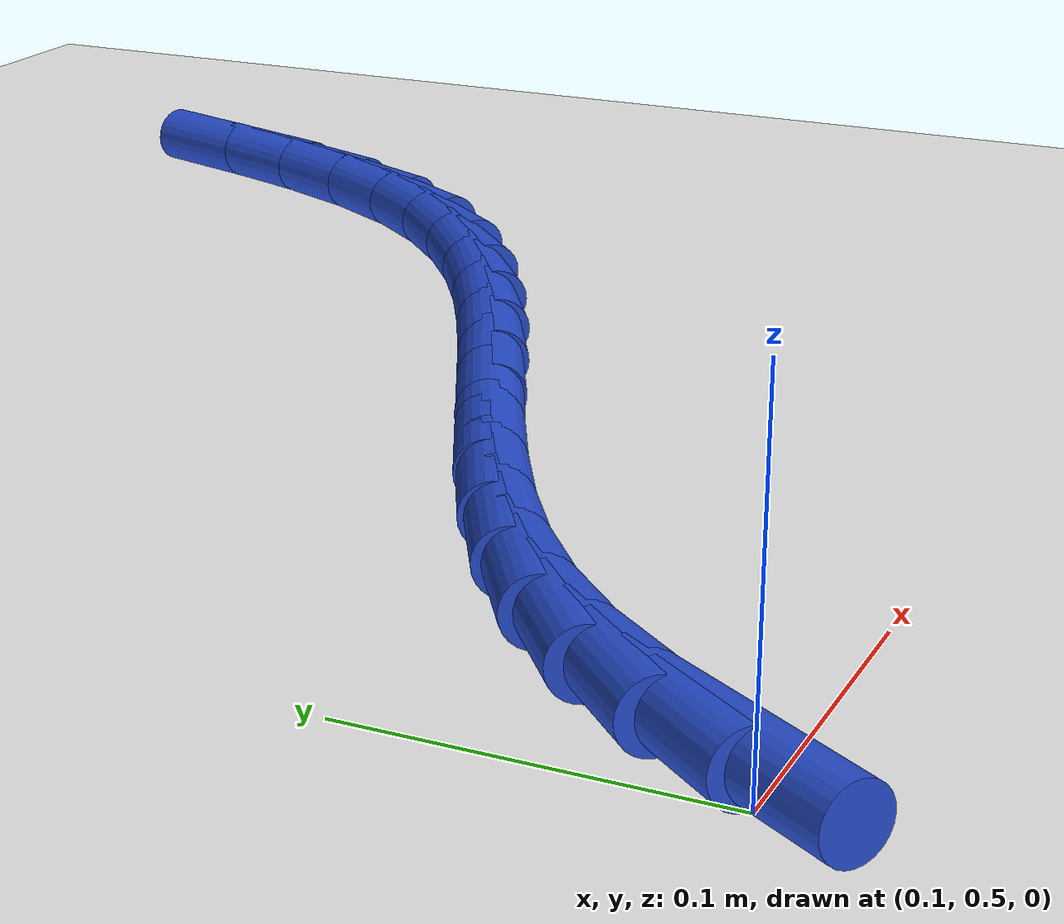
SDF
<sdf version="1.6">
 <world name="default">
  <model name="ground_plane">
   <static>1</static>
   <link name="link">
    <collision name="collision">
     <geometry><plane><normal>0 0 1</normal><size>100 100</size></plane></geometry>
     <surface><friction><ode><mu>100</mu><mu2>50</mu2></ode></friction></surface>
    </collision>
    <visual name="visual">
     <cast_shadows>0</cast_shadows>
     <geometry><plane><normal>0 0 1</normal><size>100 100</size></plane></geometry>
     <material>
      <script><uri>file://media/materials/scripts/gazebo.material</uri><name>Gazebo/WhiteGlow</name></script>
     </material>
    </visual>
   </link>
  </model>
  <model name="line">
   <link name="link_17">
    <pose>0.10909490639195141 0.5079274815498676 0.01 0 1.57 0.9995976883542236</pose>
    <collision name="collision">
     <geometry><cylinder><radius>0.01</radius><length>0.08</length></cylinder></geometry>
    </collision>
    <visual name="visual">
     <material>
      <script><name>Gazebo/Blue</name><uri>file://media/materials/scripts/gazebo.material</uri></script>
     </material>
     <geometry><cylinder><radius>0.01</radius><length>0.08</length></cylinder></geometry>
    </visual>
   </link>
   <link name="link_18">
    <pose>0.1248713026937554 0.5324760347667303 0.01 0 1.57 0.8910995392675002</pose>
    <collision name="collision">
     <geometry><cylinder><radius>0.01</radius><length>0.08</length></cylinder></geometry>
    </collision>
    <visual name="visual">
     <material>
      <script><name>Gazebo/Blue</name><uri>file://media/materials/scripts/gazebo.material</uri></script>
     </material>
     <geometry><cylinder><radius>0.01</radius><length>0.08</length></cylinder></geometry>
    </visual>
   </link>
   <link name="link_19">
    <pose>0.1429805689134286 0.5548840555922063 0.01 0 1.57 0.7683180647985376</pose>
    <collision name="collision">
     <geometry><cylinder><radius>0.01</radius><length>0.08</length></cylinder></geometry>
    </collision>
    <visual name="visual">
     <material>
      <script><name>Gazebo/Blue</name><uri>file://media/materials/scripts/gazebo.material</uri></script>
     </material>
     <geometry><cylinder><radius>0.01</radius><length>0.08</length></cylinder></geometry>
    </visual>
   </link>
   <link name="link_20">
    <pose>0.16366161804433552 0.5748704335060205 0.01 0 1.57 0.6501714459752197</pose>
    <collision name="collision">
     <geometry><cylinder><radius>0.01</radius><length>0.08</length></cylinder></geometry>
    </collision>
    <visual name="visual">
     <material>
      <script><name>Gazebo/Blue</name><uri>file://media/materials/scripts/gazebo.material</uri></script>
     </material>
     <geometry><cylinder><radius>0.01</radius><length>0.08</length></cylinder></geometry>
    </visual>
   </link>
   <link name="link_21">
    <pose>0.1868365829656764 0.5924944140471236 0.01 0 1.57 0.5576966939674891</pose>
    <collision name="collision">
     <geometry><cylinder><radius>0.01</radius><length>0.08</length></cylinder></geometry>
    </collision>
    <visual name="visual">
     <material>
      <script><name>Gazebo/Blue</name><uri>file://media/materials/scripts/gazebo.material</uri></script>
     </material>
     <geometry><cylinder><radius>0.01</radius><length>0.08</length></cylinder></geometry>
    </visual>
   </link>
   <link name="link_22">
    <pose>0.2120498657321334 0.6082210857008276 0.01 0 1.57 0.491084931968654</pose>
    <collision name="collision">
     <geometry><cylinder><radius>0.01</radius><length>0.08</length></cylinder></geometry>
    </collision>
    <visual name="visual">
     <material>
      <script><name>Gazebo/Blue</name><uri>file://media/materials/scripts/gazebo.material</uri></script>
     </material>
     <geometry><cylinder><radius>0.01</radius><length>0.08</length></cylinder></geometry>
    </visual>
   </link>
   <link name="link_23">
    <pose>0.23882375597604882 0.622539295062853 0.01 0 1.57 0.4483172115358521</pose>
    <collision name="collision">
     <geometry><cylinder><radius>0.01</radius><length>0.08</length></cylinder></geometry>
    </collision>
    <visual name="visual">
     <material>
      <script><name>Gazebo/Blue</name><uri>file://media/materials/scripts/gazebo.material</uri></script>
     </material>
     <geometry><cylinder><radius>0.01</radius><length>0.08</length></cylinder></geometry>
    </visual>
   </link>
   <link name="link_24">
    <pose>0.26668054332976476 0.6359378887289207 0.01 0 1.57 0.42751709651057657</pose>
    <collision name="collision">
     <geometry><cylinder><radius>0.01</radius><length>0.08</length></cylinder></geometry>
    </collision>
    <visual name="visual">
     <material>
      <script><name>Gazebo/Blue</name><uri>file://media/materials/scripts/gazebo.material</uri></script>
     </material>
     <geometry><cylinder><radius>0.01</radius><length>0.08</length></cylinder></geometry>
    </visual>
   </link>
   <link name="link_25">
    <pose>0.2951425174256238 0.6489057132947512 0.01 0 1.57 0.4275170038117735</pose>
    <collision name="collision">
     <geometry><cylinder><radius>0.01</radius><length>0.08</length></cylinder></geometry>
    </collision>
    <visual name="visual">
     <material>
      <script><name>Gazebo/Blue</name><uri>file://media/materials/scripts/gazebo.material</uri></script>
     </material>
     <geometry><cylinder><radius>0.01</radius><length>0.08</length></cylinder></geometry>
    </visual>
   </link>
   <link name="link_26">
    <pose>0.3237319678959679 0.6619316153560653 0.01 0 1.57 0.44803796307908167</pose>
    <collision name="collision">
     <geometry><cylinder><radius>0.01</radius><length>0.08</length></cylinder></geometry>
    </collision>
    <visual name="visual">
     <material>
      <script><name>Gazebo/Blue</name><uri>file://media/materials/scripts/gazebo.material</uri></script>
     </material>
     <geometry><cylinder><radius>0.01</radius><length>0.08</length></cylinder></geometry>
    </visual>
   </link>
   <link name="link_27">
    <pose>0.3519711843731395 0.6755044415085835 0.01 0 1.57 0.48965199902746565</pose>
    <collision name="collision">
     <geometry><cylinder><radius>0.01</radius><length>0.08</length></cylinder></geometry>
    </collision>
    <visual name="visual">
     <material>
      <script><name>Gazebo/Blue</name><uri>file://media/materials/scripts/gazebo.material</uri></script>
     </material>
     <geometry><cylinder><radius>0.01</radius><length>0.08</length></cylinder></geometry>
    </visual>
   </link>
   <link name="link_28">
    <pose>0.3793824564894808 0.6901130383480265 0.01 0 1.57 0.5535481722904566</pose>
    <collision name="collision">
     <geometry><cylinder><radius>0.01</radius><length>0.08</length></cylinder></geometry>
    </collision>
    <visual name="visual">
     <material>
      <script><name>Gazebo/Blue</name><uri>file://media/materials/scripts/gazebo.material</uri></script>
     </material>
     <geometry><cylinder><radius>0.01</radius><length>0.08</length></cylinder></geometry>
    </visual>
   </link>
   <link name="link_29">
    <pose>0.40548807387733404 0.7062462524701151 0.01 0 1.57 0.6409963537998252</pose>
    <collision name="collision">
     <geometry><cylinder><radius>0.01</radius><length>0.08</length></cylinder></geometry>
    </collision>
    <visual name="visual">
     <material>
      <script><name>Gazebo/Blue</name><uri>file://media/materials/scripts/gazebo.material</uri></script>
     </material>
     <geometry><cylinder><radius>0.01</radius><length>0.08</length></cylinder></geometry>
    </visual>
   </link>
   <link name="link_30">
    <pose>0.4298103261690416 0.7243929304705699 0.01 0 1.57 0.752345749485207</pose>
    <collision name="collision">
     <geometry><cylinder><radius>0.01</radius><length>0.08</length></cylinder></geometry>
    </collision>
    <visual name="visual">
     <material>
      <script><name>Gazebo/Blue</name><uri>file://media/materials/scripts/gazebo.material</uri></script>
     </material>
     <geometry><cylinder><radius>0.01</radius><length>0.08</length></cylinder></geometry>
    </visual>
   </link>
   <link name="link_31">
    <pose>0.4518715029969457 0.7450419189451114 0.01 0 1.57 0.8855622930854772</pose>
    <collision name="collision">
     <geometry><cylinder><radius>0.01</radius><length>0.08</length></cylinder></geometry>
    </collision>
    <visual name="visual">
     <material>
      <script><name>Gazebo/Blue</name><uri>file://media/materials/scripts/gazebo.material</uri></script>
     </material>
     <geometry><cylinder><radius>0.01</radius><length>0.08</length></cylinder></geometry>
    </visual>
   </link>
   <link name="link_32">
    <pose>0.4711938939933884 0.7686820644894603 0.01 0 1.57 1.0264599800984286</pose>
    <collision name="collision">
     <geometry><cylinder><radius>0.01</radius><length>0.08</length></cylinder></geometry>
    </collision>
    <visual name="visual">
     <material>
      <script><name>Gazebo/Blue</name><uri>file://media/materials/scripts/gazebo.material</uri></script>
     </material>
     <geometry><cylinder><radius>0.01</radius><length>0.08</length></cylinder></geometry>
    </visual>
   </link>
   <link name="link_33">
    <pose>0.4874807825842777 0.7955874439428817 0.01 0 1.57 1.1356766998835106</pose>
    <collision name="collision">
     <geometry><cylinder><radius>0.01</radius><length>0.08</length></cylinder></geometry>
    </collision>
    <visual name="visual">
     <material>
      <script><name>Gazebo/Blue</name><uri>file://media/materials/scripts/gazebo.material</uri></script>
     </material>
     <geometry><cylinder><radius>0.01</radius><length>0.08</length></cylinder></geometry>
    </visual>
   </link>
   <link name="link_34">
    <pose>0.501206925812297 0.8251166928053337 0.01 0 1.57 1.2086594481735204</pose>
    <collision name="collision">
     <geometry><cylinder><radius>0.01</radius><length>0.08</length></cylinder></geometry>
    </collision>
    <visual name="visual">
     <material>
      <script><name>Gazebo/Blue</name><uri>file://media/materials/scripts/gazebo.material</uri></script>
     </material>
     <geometry><cylinder><radius>0.01</radius><length>0.08</length></cylinder></geometry>
    </visual>
   </link>
   <link name="link_35">
    <pose>0.5130525925730723 0.8563845833495595 0.01 0 1.57 1.2507738367512033</pose>
    <collision name="collision">
     <geometry><cylinder><radius>0.01</radius><length>0.08</length></cylinder></geometry>
    </collision>
    <visual name="visual">
     <material>
      <script><name>Gazebo/Blue</name><uri>file://media/materials/scripts/gazebo.material</uri></script>
     </material>
     <geometry><cylinder><radius>0.01</radius><length>0.08</length></cylinder></geometry>
    </visual>
   </link>
  </model>
 </world>
</sdf>
